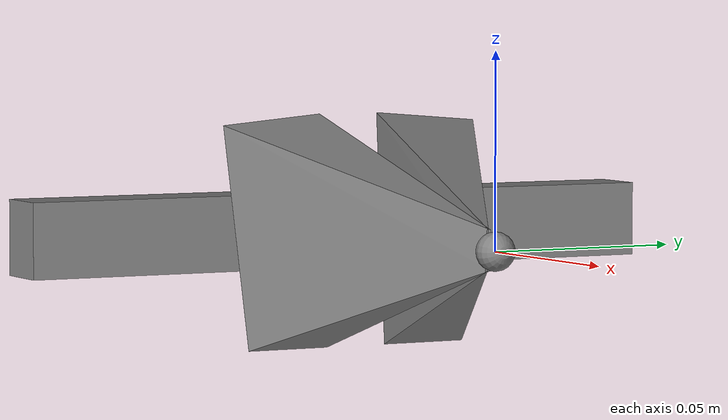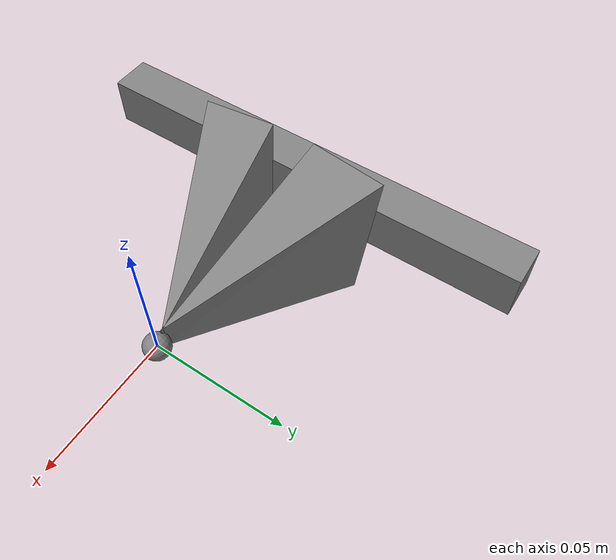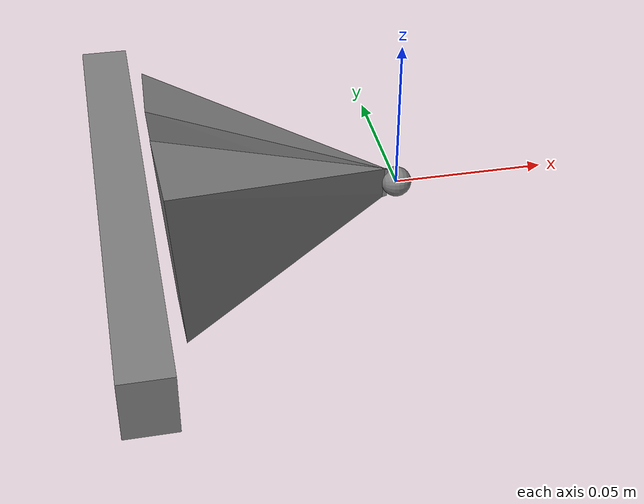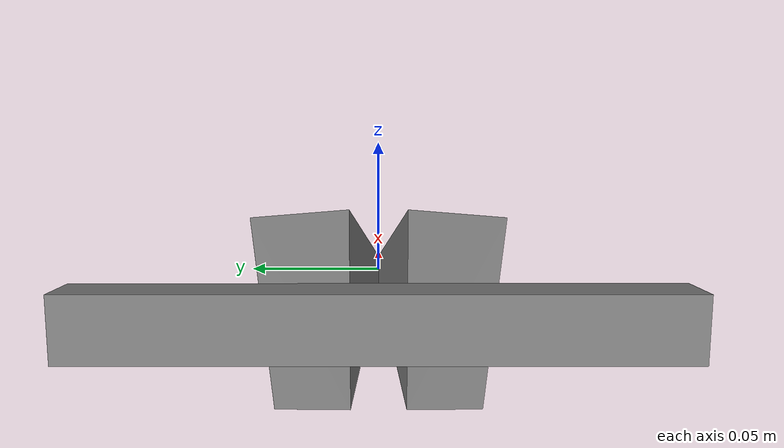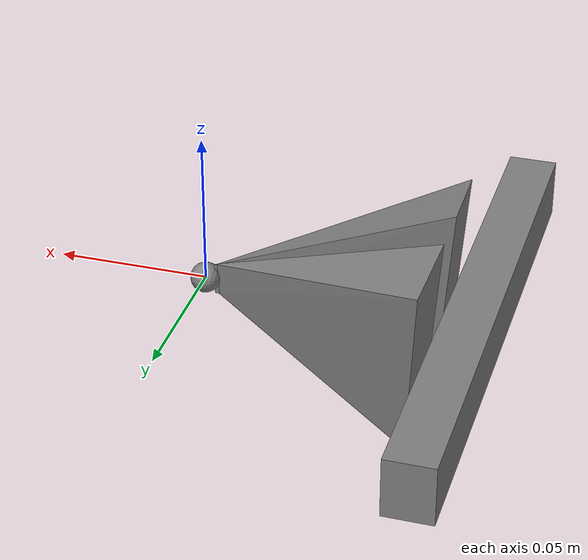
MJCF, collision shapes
<mujoco model="arx5_gripper">
    <compiler angle="radian" meshdir="assets" autolimits="true" />

    <default>
        <default class="arx5">
            <joint damping="0.005" armature="0.001" frictionloss="0.005" />
            <general ctrlrange="-30 30" />
            <default class="arx5_collision">
                <geom type="cylinder" group="3" mass="0" density="0" />
            </default>
            <default class="arx5_finger_collision">
                <geom priority="1" type="mesh" group="3" mass="0" density="0" condim="6"
                    friction="0.9 0.8 0.2" />
            </default>
        </default>
        <default class="rail">
            <joint damping="0.001" armature="0.0001" frictionloss="0.001" />
        </default>
        <default class="visual">
            <geom type="mesh" contype="0" conaffinity="0" group="2" />
        </default>

    </default>

    <asset>
        <mesh file="arx5_gripper_gear.obj" name="arx_gripper_gear" />
        <mesh file="arx5_gripper_left_finger.obj" name="arx_gripper_left_finger" />
        <mesh file="arx5_gripper_right_finger.obj" name="arx_gripper_right_finger" />
        <mesh file="arx5_gripper_collision_right_manual.obj"
            name="arx5_gripper_collision_right_manual" />
        <mesh file="arx5_gripper_collision_left_manual.obj"
            name="arx5_gripper_collision_left_manual" />
        <mesh file="arx5_gripper_motor.obj" name="arx_gripper_motor" />
    </asset>

    <worldbody>
        <body name='pos_x'>
            <geom type="sphere" size="0.001" mass='0.001' />
            <joint class="rail" name="pos_x" axis="1 0 0" range="-0.5 0.5" type="slide" />
            <body name="pos_y">
                <geom type="sphere" size="0.001" mass='0.001' />
                <joint class="rail" name="pos_y" axis="0 1 0" range="-0.5 0.5" type="slide" />
                <body name="pos_z">
                    <geom type="sphere" size="0.001" mass='0.001' />
                    <joint class="rail" name="pos_z" axis="0 0 1" range="0 0.5" type="slide" />
                    <body name="rot_z">
                        <geom type="sphere" size="0.001" mass='0.001' />
                        <joint class="rail" name="rot_z" axis="0 0 1" range="-3.14 3.14"
                            type="hinge" />
                        <body name="rot_y">
                            <geom type="sphere" size="0.001" mass='0.001' />
                            <joint class="rail" name="rot_y" axis="0 1 0" range="-1.57 1.57"
                                type="hinge" />
                            <body name="rot_x">
                                <geom type="sphere" size="0.001" mass='0.001' />
                                <joint class="rail" name="rot_x" axis="1 0 0" range="-1.57 1.57"
                                    type="hinge" />
                                <body name="gripper" pos="-0.15 0 0" euler="-3.1416 0 0">
                                    <site name="end_effector" pos="0.15 0 0"
                                        euler="0 1.57079632679 -1.57079632679"
                                    />
                                    <inertial
                                        pos="0.0471798400661976 0.000102970421835668 -0.000138510949393961"
                                        mass="0.462244960775882"
                                        diaginertia="0.00068 0.00036 0.00091" />
                                    <geom type="box" size="0.01 0.09 0.008"
                                        pos="0.06 0.00 0.00"
                                        quat="1 0 1 0"
                                        class="arx5_collision" />
                                    <geom class="visual" mesh="arx_gripper_motor" />
                                    <body name="left_finger">
                                        <joint name="left_finger_joint" axis="0 1 0"
                                            range="0.001 0.045" type="slide" class="arx5"
                                            damping="0" frictionloss="0" />
                                        <inertial
                                            pos="0 0 0"
                                            mass="0.0001"
                                            diaginertia="0.00068 0.00036 0.00091" />
                                        <geom class="visual" mesh="arx_gripper_left_finger" />
                                        <geom class="arx5_finger_collision" type="mesh"
                                            mesh="arx5_gripper_collision_left_manual"
                                            pos="0.0 -0.03 0" />
                                    </body>
                                    <body name="right_finger">
                                        <joint name="right_finger_joint" axis="0 1 0"
                                            range="-0.045 -0.001" type="slide" class="arx5"
                                            damping="0" frictionloss="0" />
                                        <inertial
                                            pos="0 0 0"
                                            mass="0.0001"
                                            diaginertia="0.00068 0.00036 0.00091" />
                                        <geom class="visual"
                                            mesh="arx_gripper_right_finger" />
                                        <geom class="arx5_finger_collision" type="mesh"
                                            mesh="arx5_gripper_collision_right_manual"
                                            pos="0.0 0.03 0" />
                                    </body>
                                    <geom class="visual" mesh="arx_gripper_gear" />
                                </body>
                            </body>
                        </body>
                    </body>
                </body>
            </body>
        </body>

    </worldbody>

    <actuator>
        <position class="arx5" name="left_finger_joint" joint="left_finger_joint" kp="10" kv="0.5"
            ctrlrange="0.001 0.045" />
        <position class="arx5" name="pos_x" joint="pos_x" kp="10.0" kv="4.0" ctrlrange="-0.5 0.5" />
        <position class="arx5" name="pos_y" joint="pos_y" kp="10.0" kv="4.0" ctrlrange="-0.5 0.5"
        />
        <position class="arx5" name="pos_z" joint="pos_z" kp="100.0" kv="10.0" ctrlrange="0.0 0.5"
        />
        <position class="arx5" name="rot_z" joint="rot_z" kp="10.0" kv="4.0"
            ctrlrange="-3.14 3.14" />
        <position class="arx5" name="rot_y" joint="rot_y" kp="10.0" kv="4.0"
            ctrlrange="-1.57 1.57"
        />
        <position class="arx5" name="rot_x" joint="rot_x" kp="10.0" kv="4.0"
            ctrlrange="-1.57 1.57"
        />
    </actuator>

    <equality>
        <joint name="gripper" joint1="left_finger_joint" joint2="right_finger_joint"
            polycoef="0.0 -1.0 0 0 0" />
    </equality>
</mujoco>
